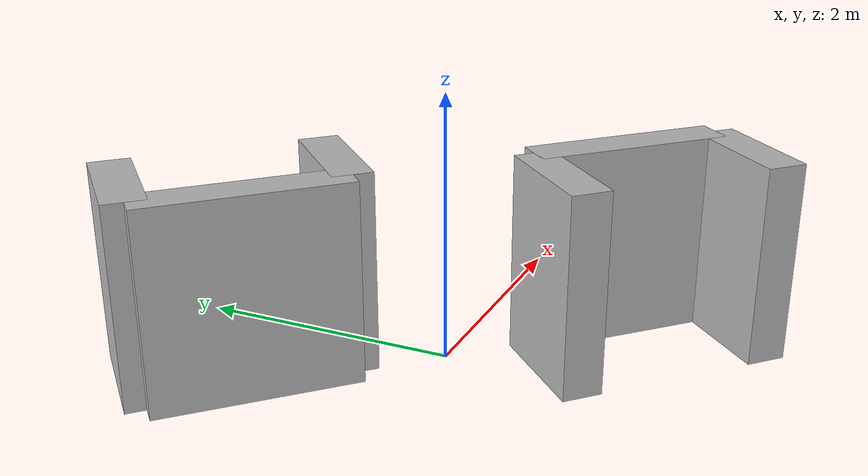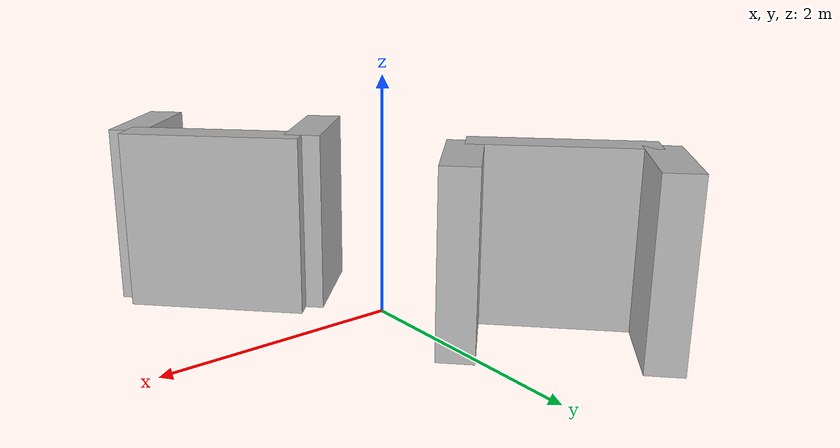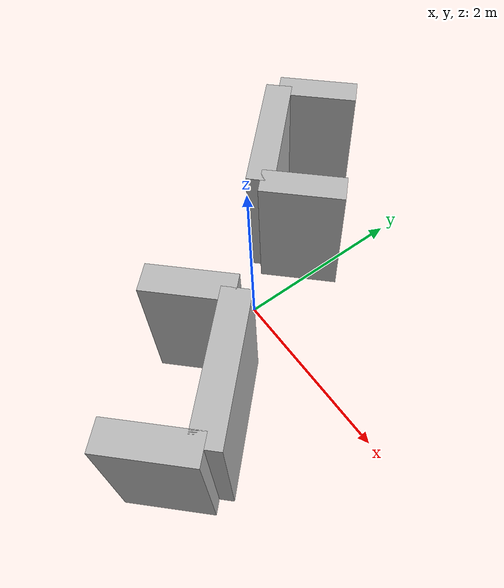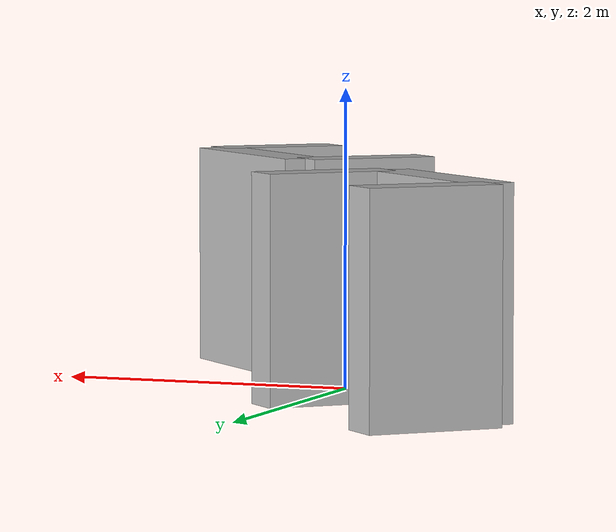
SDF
<sdf version='1.6'>
  <model name='obstacles_stage6'>
    <pose frame=''>0 0 0 0 0 0</pose>

    <!-- U-shaped obstacle in the top-left corner, closer to center -->
    <link name='obstacle'>
      <pose frame=''>-1.0 1.0 0 0 0 5.5</pose>
      <!-- Define the U-shaped obstacle -->
      <collision name='u_obstacle_bottom'>
        <pose>0 0 0.75 0 0 0</pose>
        <geometry>
          <box>
            <size>1.5 0.3 1.5</size>
          </box>
        </geometry>
      </collision>
      <visual name='u_obstacle_bottom'>
        <pose>0 0 0.75 0 0 0</pose>
        <geometry>
          <box>
            <size>1.5 0.3 1.5</size>
          </box>
        </geometry>
      </visual>
      <collision name='u_obstacle_left'>
        <pose>-0.75 0.45 0.75 0 0 0</pose>
        <geometry>
          <box>
            <size>0.3 0.9 1.5</size>
          </box>
        </geometry>
      </collision>
      <visual name='u_obstacle_left'>
        <pose>-0.75 0.45 0.75 0 0 0</pose>
        <geometry>
          <box>
            <size>0.3 0.9 1.5</size>
          </box>
        </geometry>
      </visual>
      <collision name='u_obstacle_right'>
        <pose>0.75 0.45 0.75 0 0 0</pose>
        <geometry>
          <box>
            <size>0.3 0.9 1.5</size>
          </box>
        </geometry>
      </collision>
      <visual name='u_obstacle_right'>
        <pose>0.75 0.45 0.75 0 0 0</pose>
        <geometry>
          <box>
            <size>0.3 0.9 1.5</size>
          </box>
        </geometry>
      </visual>
    </link>

    <!-- U-shaped obstacle in the bottom-right corner, closer to center -->
    <link name='obstacle_opposite'>
      <pose frame=''>1.0 -1.0 0 0 0 5.5</pose>
      <collision name='u_obstacle_bottom_opposite'>
        <pose>0 0 0.75 0 0 0</pose>
        <geometry>
          <box>
            <size>1.5 0.3 1.5</size>
          </box>
        </geometry>
      </collision>
      <visual name='u_obstacle_bottom_opposite'>
        <pose>0 0 0.75 0 0 0</pose>
        <geometry>
          <box>
            <size>1.5 0.3 1.5</size>
          </box>
        </geometry>
      </visual>
      <collision name='u_obstacle_left_opposite'>
        <pose>0.75 -0.45 0.75 0 0 0</pose>
        <geometry>
          <box>
            <size>0.3 0.9 1.5</size>
          </box>
        </geometry>
      </collision>
      <visual name='u_obstacle_left_opposite'>
        <pose>0.75 -0.45 0.75 0 0 0</pose>
        <geometry>
          <box>
            <size>0.3 0.9 1.5</size>
          </box>
        </geometry>
      </visual>
      <collision name='u_obstacle_right_opposite'>
        <pose>-0.75 -0.45 0.75 0 0 0</pose>
        <geometry>
          <box>
            <size>0.3 0.9 1.5</size>
          </box>
        </geometry>
      </collision>
      <visual name='u_obstacle_right_opposite'>
        <pose>-0.75 -0.45 0.75 0 0 0</pose>
        <geometry>
          <box>
            <size>0.3 0.9 1.5</size>
          </box>
        </geometry>
      </visual>
    </link>

    <static>1</static>
  </model>
</sdf>
